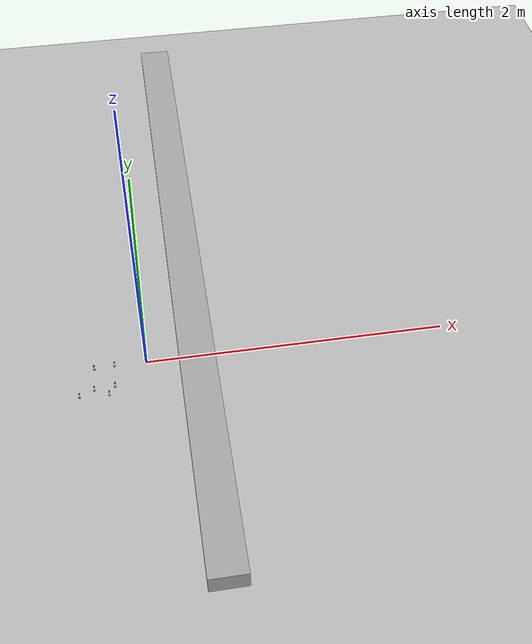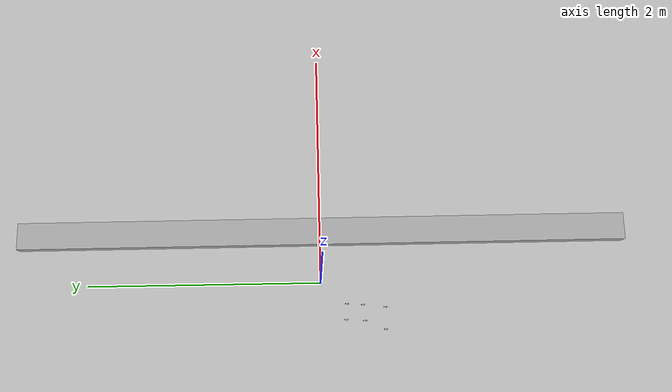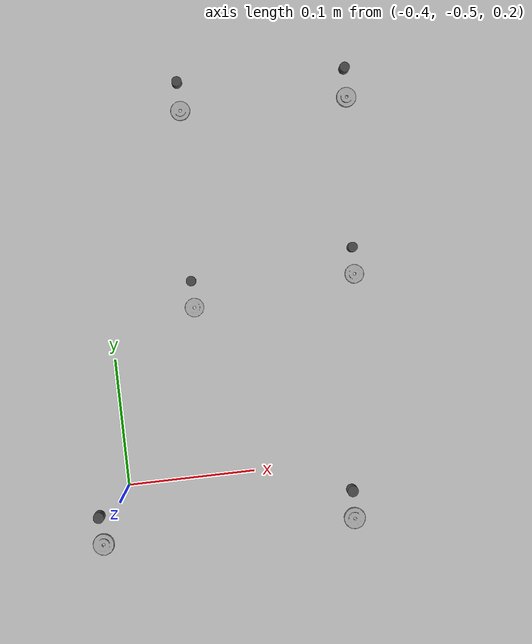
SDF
<sdf version="1.6">
 <world name="default">
  <scene><shadows>0</shadows><ambient>0.4 0.4 0.4 1</ambient><background>0.7 0.7 0.7 1</background></scene>
  <light name="sun" type="directional">
   <pose>0 0 10 0 -0 0</pose>
   <diffuse>0.8 0.8 0.8 1</diffuse>
   <specular>0.2 0.2 0.2 1</specular>
   <attenuation>
    <range>1000</range>
    <constant>0.9</constant>
    <linear>0.01</linear>
    <quadratic>0.001</quadratic>
   </attenuation>
   <direction>-0.5 0.1 -0.9</direction>
  </light>
  <light name="camera_spot_light" type="spot">
   <pose>14 -3 3 -1.55 -0 -1.62</pose>
   <diffuse>0.5 0.5 0.5 1</diffuse>
   <specular>0.1 0.1 0.1 1</specular>
   <direction>0 0 -1</direction>
   <attenuation>
    <range>50</range>
    <constant>0.5</constant>
    <linear>0.01</linear>
    <quadratic>0.001</quadratic>
   </attenuation>
   <cast_shadows>0</cast_shadows>
   <spot><inner_angle>0.6</inner_angle><outer_angle>1</outer_angle><falloff>1</falloff></spot>
  </light>
  <model name="deletion_wall">
   <static>1</static>
   <link name="sensing_link">
    <gravity>0</gravity>
    <sensor name="object_disposal_contact" type="contact">
     <update_rate>10</update_rate>
     <contact><collision>collision</collision><topic>__default_topic__</topic></contact>
    </sensor>
    <collision name="collision"><geometry><box><size>0.1 1 1</size></box></geometry></collision>
    <visual name="visual">
     <geometry><box><size>0.1 1 1</size></box></geometry>
     <cast_shadows>0</cast_shadows>
     <transparency>100</transparency>
    </visual>
   </link>
   <plugin name="object_disposal_plugin" filename="libObjectDisposalPlugin.so">
    <contact_sensor_name>object_disposal_contact</contact_sensor_name>
    <contact_side_normal>1 0 0</contact_side_normal>
    <disposal_pose>30 30 0 0 0 0</disposal_pose>
    <update_rate>5</update_rate>
   </plugin>
   <pose>1.2 -4.1 1.41 0 -0 1.5708</pose>
  </model>
  <model name="conveyor_belt">
   <model name="conveyor_belt_fixed">
    <static>1</static>
    <pose>1.15 4.2 0.35 0 0 -1.57079</pose>
    <link name="link"/>
   </model>
   <model name="conveyor_belt_moving">
    <allow_auto_disable>0</allow_auto_disable>
    <static>0</static>
    <pose>1.15 -4.12 0.35 0 0 -1.57079</pose>
    <link name="belt">
     <pose>-5 0 0 0 -0 0</pose>
     <inertial>
      <inertia><ixx>3.8185</ixx><ixy>0</ixy><ixz>0</ixz><iyy>1781.5</iyy><iyz>0</iyz><izz>1784.72</izz></inertia>
      <mass>100</mass>
     </inertial>
     <collision name="belt_collision">
      <geometry><box><size>14.6221 0.65461 0.18862</size></box></geometry>
      <surface>
       <friction>
        <ode><mu>1</mu><mu2>1</mu2></ode>
        <torsional><coefficient>1000</coefficient><patch_radius>0.1</patch_radius></torsional>
       </friction>
      </surface>
     </collision>
    </link>
   </model>
   <joint name="belt_joint" type="prismatic">
    <parent>conveyor_belt_fixed::link</parent>
    <child>conveyor_belt_moving::belt</child>
    <axis>
     <xyz>1 0 0</xyz>
     <limit><lower>0</lower><upper>1</upper></limit>
     <use_parent_model_frame>0</use_parent_model_frame>
     <dynamics><spring_reference>0</spring_reference><spring_stiffness>0</spring_stiffness></dynamics>
    </axis>
   </joint>
   <plugin name="conveyor_belt_plugin" filename="libROSConveyorBeltPlugin.so">
    <robot_namespace>/ariac</robot_namespace>
    <enable_topic>/ariac/conveyor_enable</enable_topic>
    <population_rate_modifier_topic>/ariac/population/rate_modifier</population_rate_modifier_topic>
    <link>conveyor_belt::conveyor_belt_moving::belt</link>
    <power>0</power>
    <update_rate>10</update_rate>
   </plugin>
   <pose>0.07 0.8 0.464 0 -0 0</pose>
  </model>
  <model name="bin3|gear_part_7">
   <link name="link">
    <inertial>
     <pose>0 0 0.005875 0 -0 0</pose>
     <mass>0.5</mass>
     <inertia>
      <ixx>0.000198203</ixx>
      <ixy>0</ixy>
      <ixz>0</ixz>
      <iyy>0.000198203</iyy>
      <iyz>0</iyz>
      <izz>0.000384405</izz>
     </inertia>
    </inertial>
    <collision name="collision">
     <pose>0 0 0.005875 0 -0 0</pose>
     <geometry><cylinder><length>0.012</length><radius>0.0392125</radius></cylinder></geometry>
     <surface>
      <contact><ode><max_vel>0</max_vel><min_depth>0.001</min_depth></ode></contact>
      <friction>
       <ode><mu>1</mu><mu2>1</mu2><fdir1>0 0 0</fdir1><slip1>0</slip1><slip2>0</slip2></ode>
       <torsional>
        <coefficient>1</coefficient>
        <patch_radius>0</patch_radius>
        <surface_radius>0</surface_radius>
        <use_patch_radius>1</use_patch_radius>
        <ode><slip>0</slip></ode>
       </torsional>
      </friction>
     </surface>
    </collision>
    <visual name="visual">
     <geometry>
      <mesh><uri>model://gear_part_ariac/meshes/gear.dae</uri><scale>0.25 0.25 0.25</scale></mesh>
     </geometry>
     <material>
      <script>
       <uri>model://arm_part_ariac/materials/scripts</uri>
       <uri>model://arm_part_ariac/materials/textures</uri>
       <name>ArmPart/Diffuse</name>
      </script>
     </material>
    </visual>
    <collision name="collision_asymmetric_mark">
     <pose>0 0.021 0.009 0 -0 0</pose>
     <geometry><cylinder><length>0.012</length><radius>0.00392125</radius></cylinder></geometry>
     <surface><contact><ode><max_vel>0</max_vel><min_depth>0.001</min_depth></ode></contact></surface>
    </collision>
    <visual name="visual_asymmetric_mark">
     <pose>0 0.021 0.009 0 -0 0</pose>
     <geometry><cylinder><length>0.012</length><radius>0.00392125</radius></cylinder></geometry>
     <material>
      <lighting>1</lighting>
      <script><uri>file://media/materials/scripts/gazebo.material</uri><name>Gazebo/DarkGrey</name></script>
      <emissive>0 0 0 1</emissive>
     </material>
    </visual>
   </link>
   <pose>-0.202666 -0.353534 0.19071 0 -0 0</pose>
  </model>
  <model name="bin3|gear_part_2">
   <link name="link">
    <inertial>
     <pose>0 0 0.005875 0 -0 0</pose>
     <mass>0.5</mass>
     <inertia>
      <ixx>0.000198203</ixx>
      <ixy>0</ixy>
      <ixz>0</ixz>
      <iyy>0.000198203</iyy>
      <iyz>0</iyz>
      <izz>0.000384405</izz>
     </inertia>
    </inertial>
    <collision name="collision">
     <pose>0 0 0.005875 0 -0 0</pose>
     <geometry><cylinder><length>0.012</length><radius>0.0392125</radius></cylinder></geometry>
     <surface>
      <contact><ode><max_vel>0</max_vel><min_depth>0.001</min_depth></ode></contact>
      <friction>
       <ode><mu>1</mu><mu2>1</mu2><fdir1>0 0 0</fdir1><slip1>0</slip1><slip2>0</slip2></ode>
       <torsional>
        <coefficient>1</coefficient>
        <patch_radius>0</patch_radius>
        <surface_radius>0</surface_radius>
        <use_patch_radius>1</use_patch_radius>
        <ode><slip>0</slip></ode>
       </torsional>
      </friction>
     </surface>
    </collision>
    <visual name="visual">
     <geometry>
      <mesh><uri>model://gear_part_ariac/meshes/gear.dae</uri><scale>0.25 0.25 0.25</scale></mesh>
     </geometry>
     <material>
      <script>
       <uri>model://arm_part_ariac/materials/scripts</uri>
       <uri>model://arm_part_ariac/materials/textures</uri>
       <name>ArmPart/Diffuse</name>
      </script>
     </material>
    </visual>
    <collision name="collision_asymmetric_mark">
     <pose>0 0.021 0.009 0 -0 0</pose>
     <geometry><cylinder><length>0.012</length><radius>0.00392125</radius></cylinder></geometry>
     <surface><contact><ode><max_vel>0</max_vel><min_depth>0.001</min_depth></ode></contact></surface>
    </collision>
    <visual name="visual_asymmetric_mark">
     <pose>0 0.021 0.009 0 -0 0</pose>
     <geometry><cylinder><length>0.012</length><radius>0.00392125</radius></cylinder></geometry>
     <material>
      <lighting>1</lighting>
      <script><uri>file://media/materials/scripts/gazebo.material</uri><name>Gazebo/DarkGrey</name></script>
      <emissive>0 0 0 1</emissive>
     </material>
    </visual>
   </link>
   <pose>-0.413093 -0.525394 0.320326 0 -0 0</pose>
  </model>
  <model name="bin3|gear_part_8">
   <link name="link">
    <inertial>
     <pose>0 0 0.005875 0 -0 0</pose>
     <mass>0.5</mass>
     <inertia>
      <ixx>0.000198203</ixx>
      <ixy>0</ixy>
      <ixz>0</ixz>
      <iyy>0.000198203</iyy>
      <iyz>0</iyz>
      <izz>0.000384405</izz>
     </inertia>
    </inertial>
    <collision name="collision">
     <pose>0 0 0.005875 0 -0 0</pose>
     <geometry><cylinder><length>0.012</length><radius>0.0392125</radius></cylinder></geometry>
     <surface>
      <contact><ode><max_vel>0</max_vel><min_depth>0.001</min_depth></ode></contact>
      <friction>
       <ode><mu>1</mu><mu2>1</mu2><fdir1>0 0 0</fdir1><slip1>0</slip1><slip2>0</slip2></ode>
       <torsional>
        <coefficient>1</coefficient>
        <patch_radius>0</patch_radius>
        <surface_radius>0</surface_radius>
        <use_patch_radius>1</use_patch_radius>
        <ode><slip>0</slip></ode>
       </torsional>
      </friction>
     </surface>
    </collision>
    <visual name="visual">
     <geometry>
      <mesh><uri>model://gear_part_ariac/meshes/gear.dae</uri><scale>0.25 0.25 0.25</scale></mesh>
     </geometry>
     <material>
      <script>
       <uri>model://arm_part_ariac/materials/scripts</uri>
       <uri>model://arm_part_ariac/materials/textures</uri>
       <name>ArmPart/Diffuse</name>
      </script>
     </material>
    </visual>
    <collision name="collision_asymmetric_mark">
     <pose>0 0.021 0.009 0 -0 0</pose>
     <geometry><cylinder><length>0.012</length><radius>0.00392125</radius></cylinder></geometry>
     <surface><contact><ode><max_vel>0</max_vel><min_depth>0.001</min_depth></ode></contact></surface>
    </collision>
    <visual name="visual_asymmetric_mark">
     <pose>0 0.021 0.009 0 -0 0</pose>
     <geometry><cylinder><length>0.012</length><radius>0.00392125</radius></cylinder></geometry>
     <material>
      <lighting>1</lighting>
      <script><uri>file://media/materials/scripts/gazebo.material</uri><name>Gazebo/DarkGrey</name></script>
      <emissive>0 0 0 1</emissive>
     </material>
    </visual>
   </link>
   <pose>-0.197156 -0.217781 0.233909 0 -0 0</pose>
  </model>
  <model name="bin3|gear_part_3">
   <link name="link">
    <inertial>
     <pose>0 0 0.005875 0 -0 0</pose>
     <mass>0.5</mass>
     <inertia>
      <ixx>0.000198203</ixx>
      <ixy>0</ixy>
      <ixz>0</ixz>
      <iyy>0.000198203</iyy>
      <iyz>0</iyz>
      <izz>0.000384405</izz>
     </inertia>
    </inertial>
    <collision name="collision">
     <pose>0 0 0.005875 0 -0 0</pose>
     <geometry><cylinder><length>0.012</length><radius>0.0392125</radius></cylinder></geometry>
     <surface>
      <contact><ode><max_vel>0</max_vel><min_depth>0.001</min_depth></ode></contact>
      <friction>
       <ode><mu>1</mu><mu2>1</mu2><fdir1>0 0 0</fdir1><slip1>0</slip1><slip2>0</slip2></ode>
       <torsional>
        <coefficient>1</coefficient>
        <patch_radius>0</patch_radius>
        <surface_radius>0</surface_radius>
        <use_patch_radius>1</use_patch_radius>
        <ode><slip>0</slip></ode>
       </torsional>
      </friction>
     </surface>
    </collision>
    <visual name="visual">
     <geometry>
      <mesh><uri>model://gear_part_ariac/meshes/gear.dae</uri><scale>0.25 0.25 0.25</scale></mesh>
     </geometry>
     <material>
      <script>
       <uri>model://arm_part_ariac/materials/scripts</uri>
       <uri>model://arm_part_ariac/materials/textures</uri>
       <name>ArmPart/Diffuse</name>
      </script>
     </material>
    </visual>
    <collision name="collision_asymmetric_mark">
     <pose>0 0.021 0.009 0 -0 0</pose>
     <geometry><cylinder><length>0.012</length><radius>0.00392125</radius></cylinder></geometry>
     <surface><contact><ode><max_vel>0</max_vel><min_depth>0.001</min_depth></ode></contact></surface>
    </collision>
    <visual name="visual_asymmetric_mark">
     <pose>0 0.021 0.009 0 -0 0</pose>
     <geometry><cylinder><length>0.012</length><radius>0.00392125</radius></cylinder></geometry>
     <material>
      <lighting>1</lighting>
      <script><uri>file://media/materials/scripts/gazebo.material</uri><name>Gazebo/DarkGrey</name></script>
      <emissive>0 0 0 1</emissive>
     </material>
    </visual>
   </link>
   <pose>-0.325918 -0.211487 0.21638 0 -0 0</pose>
  </model>
  <model name="bin3|gear_part_4">
   <link name="link">
    <inertial>
     <pose>0 0 0.005875 0 -0 0</pose>
     <mass>0.5</mass>
     <inertia>
      <ixx>0.000198203</ixx>
      <ixy>0</ixy>
      <ixz>0</ixz>
      <iyy>0.000198203</iyy>
      <iyz>0</iyz>
      <izz>0.000384405</izz>
     </inertia>
    </inertial>
    <collision name="collision">
     <pose>0 0 0.005875 0 -0 0</pose>
     <geometry><cylinder><length>0.012</length><radius>0.0392125</radius></cylinder></geometry>
     <surface>
      <contact><ode><max_vel>0</max_vel><min_depth>0.001</min_depth></ode></contact>
      <friction>
       <ode><mu>1</mu><mu2>1</mu2><fdir1>0 0 0</fdir1><slip1>0</slip1><slip2>0</slip2></ode>
       <torsional>
        <coefficient>1</coefficient>
        <patch_radius>0</patch_radius>
        <surface_radius>0</surface_radius>
        <use_patch_radius>1</use_patch_radius>
        <ode><slip>0</slip></ode>
       </torsional>
      </friction>
     </surface>
    </collision>
    <visual name="visual">
     <geometry>
      <mesh><uri>model://gear_part_ariac/meshes/gear.dae</uri><scale>0.25 0.25 0.25</scale></mesh>
     </geometry>
     <material>
      <script>
       <uri>model://arm_part_ariac/materials/scripts</uri>
       <uri>model://arm_part_ariac/materials/textures</uri>
       <name>ArmPart/Diffuse</name>
      </script>
     </material>
    </visual>
    <collision name="collision_asymmetric_mark">
     <pose>0 0.021 0.009 0 -0 0</pose>
     <geometry><cylinder><length>0.012</length><radius>0.00392125</radius></cylinder></geometry>
     <surface><contact><ode><max_vel>0</max_vel><min_depth>0.001</min_depth></ode></contact></surface>
    </collision>
    <visual name="visual_asymmetric_mark">
     <pose>0 0.021 0.009 0 -0 0</pose>
     <geometry><cylinder><length>0.012</length><radius>0.00392125</radius></cylinder></geometry>
     <material>
      <lighting>1</lighting>
      <script><uri>file://media/materials/scripts/gazebo.material</uri><name>Gazebo/DarkGrey</name></script>
      <emissive>0 0 0 1</emissive>
     </material>
    </visual>
   </link>
   <pose>-0.332911 -0.365818 0.192905 0 -0 0</pose>
  </model>
  <model name="bin3|gear_part_6">
   <link name="link">
    <inertial>
     <pose>0 0 0.005875 0 -0 0</pose>
     <mass>0.5</mass>
     <inertia>
      <ixx>0.000198203</ixx>
      <ixy>0</ixy>
      <ixz>0</ixz>
      <iyy>0.000198203</iyy>
      <iyz>0</iyz>
      <izz>0.000384405</izz>
     </inertia>
    </inertial>
    <collision name="collision">
     <pose>0 0 0.005875 0 -0 0</pose>
     <geometry><cylinder><length>0.012</length><radius>0.0392125</radius></cylinder></geometry>
     <surface>
      <contact><ode><max_vel>0</max_vel><min_depth>0.001</min_depth></ode></contact>
      <friction>
       <ode><mu>1</mu><mu2>1</mu2><fdir1>0 0 0</fdir1><slip1>0</slip1><slip2>0</slip2></ode>
       <torsional>
        <coefficient>1</coefficient>
        <patch_radius>0</patch_radius>
        <surface_radius>0</surface_radius>
        <use_patch_radius>1</use_patch_radius>
        <ode><slip>0</slip></ode>
       </torsional>
      </friction>
     </surface>
    </collision>
    <visual name="visual">
     <geometry>
      <mesh><uri>model://gear_part_ariac/meshes/gear.dae</uri><scale>0.25 0.25 0.25</scale></mesh>
     </geometry>
     <material>
      <script>
       <uri>model://arm_part_ariac/materials/scripts</uri>
       <uri>model://arm_part_ariac/materials/textures</uri>
       <name>ArmPart/Diffuse</name>
      </script>
     </material>
    </visual>
    <collision name="collision_asymmetric_mark">
     <pose>0 0.021 0.009 0 -0 0</pose>
     <geometry><cylinder><length>0.012</length><radius>0.00392125</radius></cylinder></geometry>
     <surface><contact><ode><max_vel>0</max_vel><min_depth>0.001</min_depth></ode></contact></surface>
    </collision>
    <visual name="visual_asymmetric_mark">
     <pose>0 0.021 0.009 0 -0 0</pose>
     <geometry><cylinder><length>0.012</length><radius>0.00392125</radius></cylinder></geometry>
     <material>
      <lighting>1</lighting>
      <script><uri>file://media/materials/scripts/gazebo.material</uri><name>Gazebo/DarkGrey</name></script>
      <emissive>0 0 0 1</emissive>
     </material>
    </visual>
   </link>
   <pose>-0.233137 -0.528044 0.313699 0 -0 0</pose>
  </model>
  <plugin name="populate_conveyor" filename="libROSPopulationPlugin.so">
   <activation_topic>/ariac/populate_belt</activation_topic>
   <rate_modifier_topic>/ariac/population/rate_modifier</rate_modifier_topic>
   <control_topic>/ariac/population/control</control_topic>
   <state_topic>/ariac/population/state</state_topic>
   <start_index>0</start_index>
   <prefix_object_names>0</prefix_object_names>
   <loop_forever>1</loop_forever>
   <frame>conveyor_belt::conveyor_belt_fixed</frame>
   <object_sequence>
    <object><time>1.0</time><type>piston_rod_part</type><pose>0.0 0.0 0.1 0.0 0.0 1.57079632679</pose></object>
    <object><time>5.0</time><type>gear_part</type><pose>0.0 0.0 0.1 0.0 0.0 1.57079632679</pose></object>
   </object_sequence>
   <update_rate>10</update_rate>
  </plugin>
  <plugin name="task_manager" filename="libROSAriacTaskManagerPlugin.so">
   <robot_namespace>ariac</robot_namespace>
   <competition_time_limit>-1</competition_time_limit>
   <start_competition_service_name>/ariac/start_competition</start_competition_service_name>
   <end_competition_service_name>/ariac/end_competition</end_competition_service_name>
   <population_activate_topic>/ariac/populate_belt</population_activate_topic>
   <conveyor_control_service>/ariac/conveyor/control</conveyor_control_service>
   <submit_tray_service_name>/ariac/submit_shipment</submit_tray_service_name>
   <material_locations_service_name>/ariac/material_locations</material_locations_service_name>
   <shipment_content_topic_name>/ariac/trays</shipment_content_topic_name>
   <orders_topic>/ariac/orders</orders_topic>
   <agv index="1">
    <agv_control_service_name>/ariac/agv1</agv_control_service_name>
    <agv_animate_service_name>/ariac/agv1/animate</agv_animate_service_name>
    <get_content_service_name>/ariac/kit_tray_1/get_content</get_content_service_name>
   </agv>
   <agv index="2">
    <agv_control_service_name>/ariac/agv2</agv_control_service_name>
    <agv_animate_service_name>/ariac/agv2/animate</agv_animate_service_name>
    <get_content_service_name>/ariac/kit_tray_2/get_content</get_content_service_name>
   </agv>
   <order>
    <name>order_0</name>
    <start_time>0.0</start_time>
    <shipment>
     <shipment_type>order_0_shipment_0</shipment_type>
     <destination>any</destination>
     <product><type>piston_rod_part</type><pose>0.1 -0.1 0.0 0.0 0.0 0.0</pose></product>
     <product><type>gear_part</type><pose>-0.1 0.0 0.0 0.0 0.0 3.14159265359</pose></product>
     <product><type>gear_part</type><pose>-0.1 0.15 0.0 0.0 0.0 0.0</pose></product>
    </shipment>
   </order>
   <material_locations>
    <material>
     <type>piston_rod_part</type>
     <location><storage_unit>bin2</storage_unit></location>
     <location><storage_unit>belt</storage_unit></location>
    </material>
    <material><type>gasket_part</type><location><storage_unit>bin4</storage_unit></location></material>
    <material>
     <type>gear_part</type>
     <location><storage_unit>bin3</storage_unit></location>
     <location><storage_unit>belt</storage_unit></location>
    </material>
   </material_locations>
   <update_rate>10</update_rate>
  </plugin>
  <model name="under_workcell_plane">
   <pose>0 0 -5.1 0 -0 0</pose>
   <static>1</static>
   <link name="link">
    <collision name="collision">
     <geometry><plane><normal>0 0 1</normal><size>25 25</size></plane></geometry>
     <surface><friction><ode><mu>100</mu><mu2>50</mu2></ode></friction></surface>
    </collision>
   </link>
  </model>
  <model name="ground_plane">
   <static>1</static>
   <pose>-50 50 -0.01 0 -0 0</pose>
   <link name="link">
    <visual name="visual">
     <cast_shadows>0</cast_shadows>
     <geometry><plane><normal>0 0 1</normal><size>150 150</size></plane></geometry>
     <material>
      <script><uri>file://media/materials/scripts/gazebo.material</uri><name>Gazebo/Grey</name></script>
     </material>
    </visual>
   </link>
  </model>
  <model name="linear_rail">
   <pose>0.3 0 0.9 0 -0 0</pose>
   <static>1</static>
   <link name="rail_link">
    <visual name="rail_link_visual">
     <geometry><box><size>0.2 4.6 0.1</size></box></geometry>
     <material><script><uri>__default__</uri><name>__default__</name></script></material>
    </visual>
    <collision name="rail_link_collision"><geometry><box><size>0.2 4.6 0.1</size></box></geometry></collision>
   </link>
  </model>
  <gravity>0 0 -9.8</gravity>
  <magnetic_field>6e-06 2.3e-05 -4.2e-05</magnetic_field>
  <atmosphere type="adiabatic"/>
  <physics name="default_physics" default="0" type="ode">
   <max_step_size>0.001</max_step_size>
   <real_time_factor>1</real_time_factor>
   <real_time_update_rate>1000</real_time_update_rate>
  </physics>
  <audio><device>default</device></audio>
  <spherical_coordinates>
   <surface_model>EARTH_WGS84</surface_model>
   <latitude_deg>0</latitude_deg>
   <longitude_deg>0</longitude_deg>
   <elevation>0</elevation>
   <heading_deg>0</heading_deg>
  </spherical_coordinates>
  <model name="gear_objects"/>
 </world>
</sdf>
